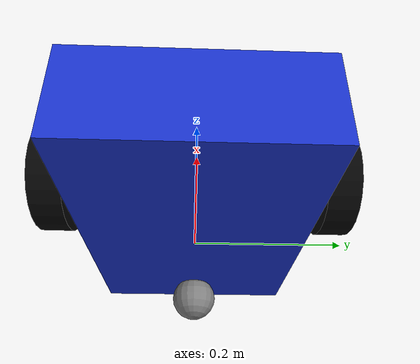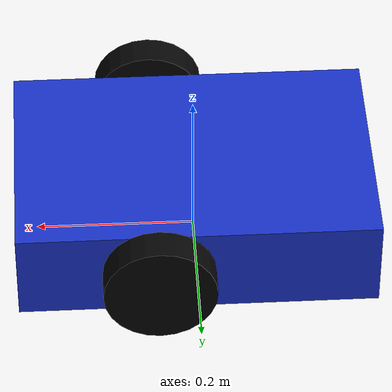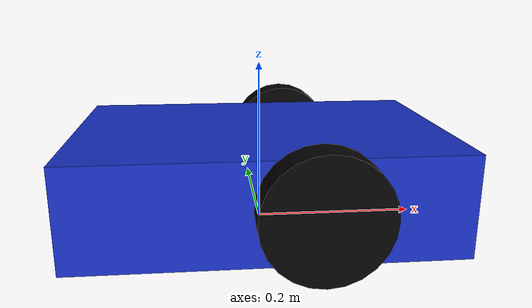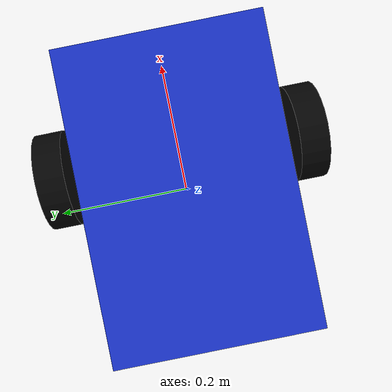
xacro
<?xml version="1.0"?>
<robot name="dif_bot" xmlns:xacro="http://www.ros.org/wiki/xacro">

  <xacro:property name="base_length" value="0.45"/>
  <xacro:property name="base_width" value="0.30"/>
  <xacro:property name="base_height" value="0.12"/>

  <xacro:property name="wheel_radius" value="0.07"/>
  <xacro:property name="wheel_width" value="0.04"/>
  <xacro:property name="wheel_offset_y" value="0.18"/>
  <xacro:property name="wheel_offset_x" value="0.05"/>

  <xacro:property name="caster_radius" value="0.035"/>
  <xacro:property name="caster_offset_x" value="-0.17"/>
  <xacro:property name="caster_offset_z" value="-0.06"/>

  <link name="base_footprint"/>

  <link name="base_link">
    <visual>
      <origin xyz="0 0 ${base_height/2}" rpy="0 0 0"/>
      <geometry>
        <box size="${base_length} ${base_width} ${base_height}"/>
      </geometry>
      <material name="blue">
        <color rgba="0.1 0.2 0.8 1"/>
      </material>
    </visual>
  </link>

  <joint name="base_footprint_joint" type="fixed">
    <parent link="base_footprint"/>
    <child link="base_link"/>
    <origin xyz="0 0 0" rpy="0 0 0"/>
  </joint>

  <xacro:macro name="wheel" params="name y_pos">
    <link name="${name}">
      <visual>
        <origin xyz="0 0 0" rpy="1.5708 0 0"/>
        <geometry>
          <cylinder radius="${wheel_radius}" length="${wheel_width}"/>
        </geometry>
        <material name="black">
          <color rgba="0.02 0.02 0.02 1"/>
        </material>
      </visual>
    </link>

    <joint name="${name}_joint" type="continuous">
      <parent link="base_link"/>
      <child link="${name}"/>
      <origin xyz="${wheel_offset_x} ${y_pos} ${wheel_radius}" rpy="0 0 0"/>
      <axis xyz="0 1 0"/>
    </joint>
  </xacro:macro>

  <xacro:wheel name="left_wheel" y_pos="${wheel_offset_y}"/>
  <xacro:wheel name="right_wheel" y_pos="${-wheel_offset_y}"/>

  <link name="caster_wheel">
    <visual>
      <geometry>
        <sphere radius="${caster_radius}"/>
      </geometry>
      <material name="gray">
        <color rgba="0.5 0.5 0.5 1"/>
      </material>
    </visual>
  </link>

  <joint name="caster_joint" type="fixed">
    <parent link="base_link"/>
    <child link="caster_wheel"/>
    <origin xyz="${caster_offset_x} 0 ${caster_offset_z + caster_radius}" rpy="0 0 0"/>
  </joint>

</robot>
